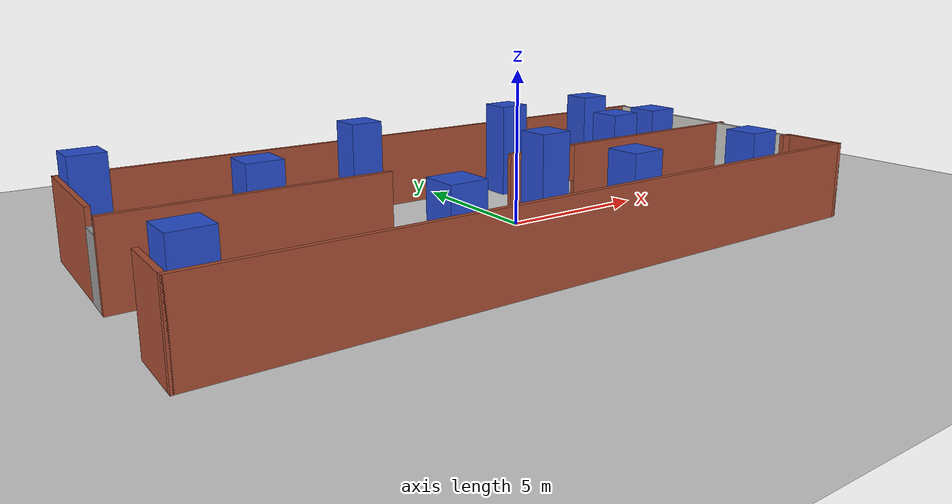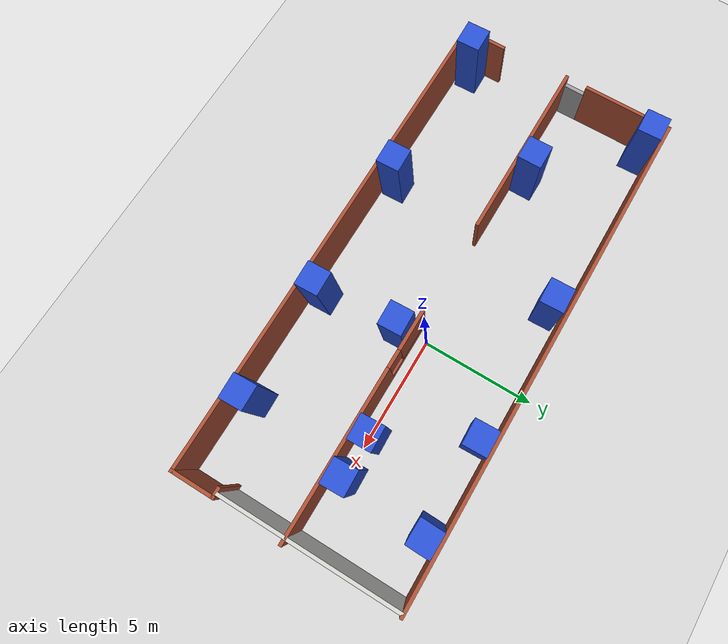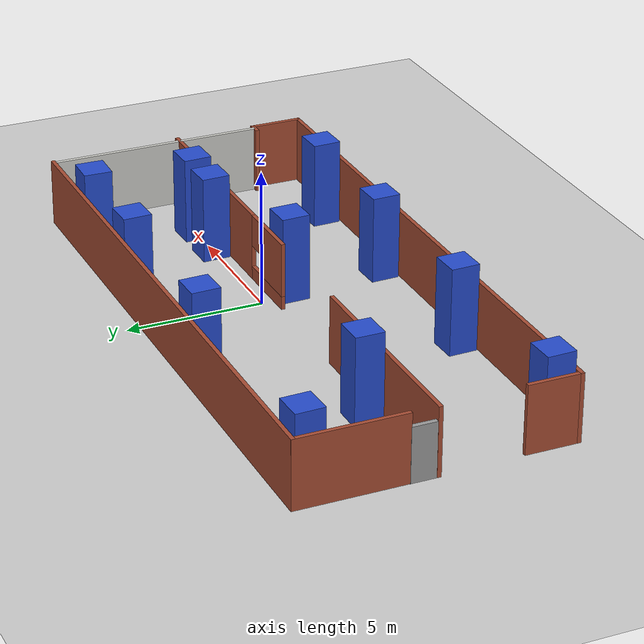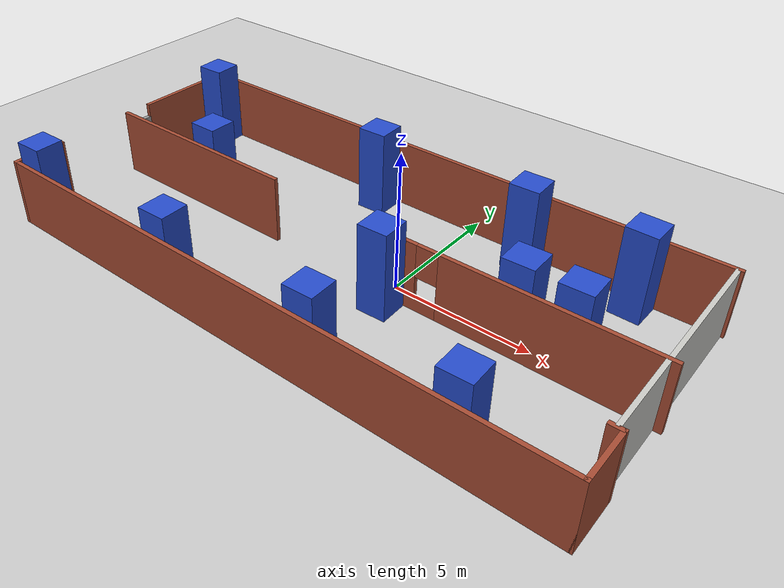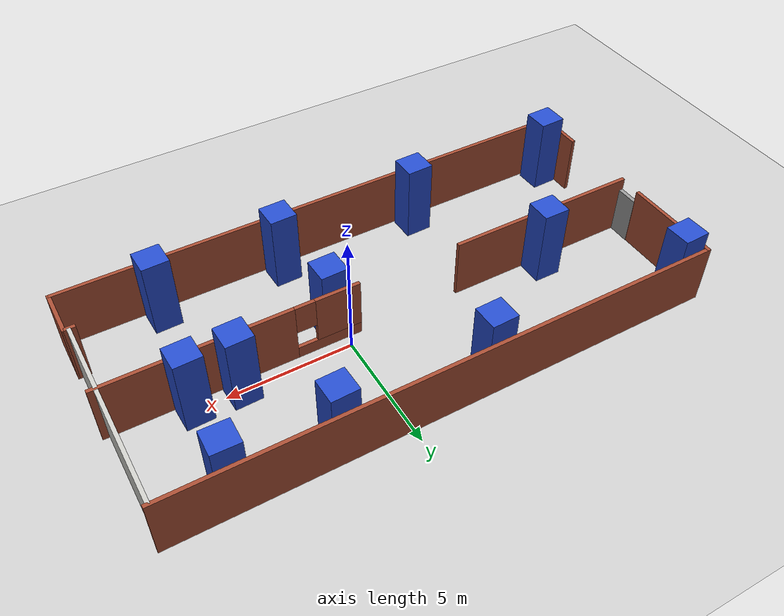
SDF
<sdf version="1.6">
 <world name="default">
  <light name="sun" type="directional">
   <pose>0 0 10 0 -0 0</pose>
   <diffuse>0.8 0.8 0.8 1</diffuse>
   <specular>0.2 0.2 0.2 1</specular>
   <attenuation>
    <range>1000</range>
    <constant>0.9</constant>
    <linear>0.01</linear>
    <quadratic>0.001</quadratic>
   </attenuation>
   <direction>-0.5 0.1 -0.9</direction>
  </light>
  <model name="ground_plane">
   <static>1</static>
   <link name="link">
    <collision name="collision">
     <geometry><plane><normal>0 0 1</normal><size>100 100</size></plane></geometry>
     <surface><friction><ode><mu>100</mu><mu2>50</mu2></ode></friction></surface>
    </collision>
    <visual name="visual">
     <cast_shadows>0</cast_shadows>
     <geometry><plane><normal>0 0 1</normal><size>100 100</size></plane></geometry>
     <material>
      <script><uri>file://media/materials/scripts/gazebo.material</uri><name>Gazebo/Grey</name></script>
     </material>
    </visual>
   </link>
  </model>
  <physics name="default_physics" default="0" type="ode">
   <real_time_update_rate>1000</real_time_update_rate>
   <max_step_size>0.001</max_step_size>
   <real_time_factor>1</real_time_factor>
   <ode>
    <solver>
     <type>quick</type>
     <iters>150</iters>
     <precon_iters>0</precon_iters>
     <sor>1.4</sor>
     <use_dynamic_moi_rescaling>1</use_dynamic_moi_rescaling>
    </solver>
    <constraints>
     <cfm>1e-05</cfm>
     <erp>0.2</erp>
     <contact_max_correcting_vel>2000</contact_max_correcting_vel>
     <contact_surface_layer>0.01</contact_surface_layer>
    </constraints>
   </ode>
  </physics>
  <scene><ambient>0.4 0.4 0.4 1</ambient><background>0.7 0.7 0.7 1</background><shadows>1</shadows></scene>
  <gravity>0 0 -9.8</gravity>
  <magnetic_field>6e-06 2.3e-05 -4.2e-05</magnetic_field>
  <atmosphere type="adiabatic"/>
  <audio><device>default</device></audio>
  <spherical_coordinates>
   <surface_model>EARTH_WGS84</surface_model>
   <latitude_deg>0</latitude_deg>
   <longitude_deg>0</longitude_deg>
   <elevation>0</elevation>
   <heading_deg>0</heading_deg>
  </spherical_coordinates>
  <model name="Almacen_RobotPallet">
   <pose>-1.77101 -0.477706 0 0 -0 0</pose>
   <link name="Door_0">
    <collision name="Door_0_Collision">
     <geometry><box><size>0.9 0.17 2</size></box></geometry>
     <pose>0 0 1 0 -0 0</pose>
    </collision>
    <visual name="Door_0_Visual">
     <pose>0 0 1 0 -0 0</pose>
     <geometry><box><size>0.9 0.17 2</size></box></geometry>
     <material>
      <script><uri>file://media/materials/scripts/gazebo.material</uri><name>Gazebo/Grey</name></script>
     </material>
    </visual>
    <pose>-10.9928 0.560426 0 0 -0 1.56688</pose>
   </link>
   <link name="Wall_1">
    <collision name="Wall_1_Collision">
     <geometry><box><size>22 0.15 2.5</size></box></geometry>
     <pose>0 0 1.25 0 -0 0</pose>
    </collision>
    <visual name="Wall_1_Visual">
     <pose>0 0 1.25 0 -0 0</pose>
     <geometry><box><size>22 0.15 2.5</size></box></geometry>
     <material>
      <script><uri>file://media/materials/scripts/gazebo.material</uri><name>Gazebo/Bricks</name></script>
      <ambient>1 1 1 1</ambient>
     </material>
     <meta><layer>0</layer></meta>
    </visual>
    <pose>0.006161 -4.91576 0 0 -0 0</pose>
   </link>
   <link name="Wall_11">
    <pose>6.08129 -0.036029 0 0 -0 3.14159</pose>
    <visual name="Wall_11_Visual_0">
     <pose>-1.30332 0 1.25 0 -0 0</pose>
     <geometry><box><size>7.39335 0.15 2.5</size></box></geometry>
     <material>
      <script><uri>file://media/materials/scripts/gazebo.material</uri><name>Gazebo/Bricks</name></script>
      <ambient>1 1 1 1</ambient>
     </material>
     <meta><layer>0</layer></meta>
    </visual>
    <collision name="Wall_11_Collision_0">
     <geometry><box><size>7.39335 0.15 2.5</size></box></geometry>
     <pose>-1.30332 0 1.25 0 -0 0</pose>
    </collision>
    <visual name="Wall_11_Visual_1">
     <pose>3.69668 0 0.25 0 -0 0</pose>
     <geometry><box><size>2.60665 0.15 0.5</size></box></geometry>
     <material>
      <script><uri>file://media/materials/scripts/gazebo.material</uri><name>Gazebo/Bricks</name></script>
      <ambient>1 1 1 1</ambient>
     </material>
     <meta><layer>0</layer></meta>
    </visual>
    <collision name="Wall_11_Collision_1">
     <geometry><box><size>2.60665 0.15 0.5</size></box></geometry>
     <pose>3.69668 0 0.25 0 -0 0</pose>
    </collision>
    <visual name="Wall_11_Visual_2">
     <pose>4.09668 0 1.5 0 -0 0</pose>
     <geometry><box><size>1.80665 0.15 2</size></box></geometry>
     <material>
      <script><uri>file://media/materials/scripts/gazebo.material</uri><name>Gazebo/Bricks</name></script>
      <ambient>1 1 1 1</ambient>
     </material>
     <meta><layer>0</layer></meta>
    </visual>
    <collision name="Wall_11_Collision_2">
     <geometry><box><size>1.80665 0.15 2</size></box></geometry>
     <pose>4.09668 0 1.5 0 -0 0</pose>
    </collision>
    <visual name="Wall_11_Visual_3">
     <pose>2.79335 0 1.9 0 -0 0</pose>
     <geometry><box><size>0.8 0.15 1.2</size></box></geometry>
     <material>
      <script><uri>file://media/materials/scripts/gazebo.material</uri><name>Gazebo/Bricks</name></script>
      <ambient>1 1 1 1</ambient>
     </material>
     <meta><layer>0</layer></meta>
    </visual>
    <collision name="Wall_11_Collision_3">
     <geometry><box><size>0.8 0.15 1.2</size></box></geometry>
     <pose>2.79335 0 1.9 0 -0 0</pose>
    </collision>
   </link>
   <link name="Wall_13">
    <collision name="Wall_13_Collision">
     <geometry><box><size>22 0.15 2.5</size></box></geometry>
     <pose>0 0 1.25 0 -0 0</pose>
    </collision>
    <visual name="Wall_13_Visual">
     <pose>0 0 1.25 0 -0 0</pose>
     <geometry><box><size>22 0.15 2.5</size></box></geometry>
     <material>
      <script><uri>file://media/materials/scripts/gazebo.material</uri><name>Gazebo/Bricks</name></script>
      <ambient>1 1 1 1</ambient>
     </material>
     <meta><layer>0</layer></meta>
    </visual>
    <pose>-0.063767 4.91576 0 0 -0 3.14159</pose>
   </link>
   <link name="Wall_17">
    <collision name="Wall_17_Collision">
     <geometry><box><size>8 0.15 2.5</size></box></geometry>
     <pose>0 0 1.25 0 -0 0</pose>
    </collision>
    <visual name="Wall_17_Visual">
     <pose>0 0 1.25 0 -0 0</pose>
     <geometry><box><size>8 0.15 2.5</size></box></geometry>
     <material>
      <script><uri>file://media/materials/scripts/gazebo.material</uri><name>Gazebo/Bricks</name></script>
      <ambient>1 1 1 1</ambient>
     </material>
     <meta><layer>0</layer></meta>
    </visual>
    <pose>-7.08129 0.033931 0 0 -0 0</pose>
   </link>
   <link name="Wall_20">
    <collision name="Wall_20_Collision">
     <geometry><box><size>4 0.15 2.5</size></box></geometry>
     <pose>0 0 1.25 0 -0 0</pose>
    </collision>
    <visual name="Wall_20_Visual">
     <pose>0 0 1.25 0 -0 0</pose>
     <geometry><box><size>4 0.15 2.5</size></box></geometry>
     <material>
      <script><uri>file://media/materials/scripts/gazebo.material</uri><name>Gazebo/Bricks</name></script>
      <ambient>1 1 1 1</ambient>
     </material>
     <meta><layer>0</layer></meta>
    </visual>
    <pose>-10.9937 2.99076 0 0 -0 -1.5708</pose>
   </link>
   <link name="Wall_25">
    <collision name="Wall_25_Collision">
     <geometry><box><size>5 0.15 2.5</size></box></geometry>
     <pose>0 0 1.25 0 -0 0</pose>
    </collision>
    <visual name="Wall_25_Visual">
     <pose>0 0 1.25 0 -0 0</pose>
     <geometry><box><size>5 0.15 2.5</size></box></geometry>
     <material>
      <script><uri>file://media/materials/scripts/gazebo.material</uri><name>Gazebo/CeilingTiled</name></script>
      <ambient>1 1 1 1</ambient>
     </material>
     <meta><layer>0</layer></meta>
    </visual>
    <pose>10.7678 2.4228 0 0 -0 -1.5708</pose>
   </link>
   <link name="Wall_27">
    <collision name="Wall_27_Collision">
     <geometry><box><size>3 0.15 2.5</size></box></geometry>
     <pose>0 0 1.25 0 -0 0</pose>
    </collision>
    <visual name="Wall_27_Visual">
     <pose>0 0 1.25 0 -0 0</pose>
     <geometry><box><size>3 0.15 2.5</size></box></geometry>
     <material>
      <script><uri>file://media/materials/scripts/gazebo.material</uri><name>Gazebo/CeilingTiled</name></script>
      <ambient>1 1 1 1</ambient>
     </material>
     <meta><layer>0</layer></meta>
    </visual>
    <pose>10.7578 -1.5472 0 0 -0 -1.5708</pose>
   </link>
   <link name="Wall_29">
    <collision name="Wall_29_Collision">
     <geometry><box><size>0.5 0.15 2.5</size></box></geometry>
     <pose>0 0 1.25 0 -0 0</pose>
    </collision>
    <visual name="Wall_29_Visual">
     <pose>0 0 1.25 0 -0 0</pose>
     <geometry><box><size>0.5 0.15 2.5</size></box></geometry>
     <material>
      <script><uri>file://media/materials/scripts/gazebo.material</uri><name>Gazebo/Bricks</name></script>
      <ambient>1 1 1 1</ambient>
     </material>
     <meta><layer>0</layer></meta>
    </visual>
    <pose>10.7562 -3.06576 0 0 -0 3.14159</pose>
   </link>
   <link name="Wall_3">
    <collision name="Wall_3_Collision">
     <geometry><box><size>2 0.15 2.5</size></box></geometry>
     <pose>0 0 1.25 0 -0 0</pose>
    </collision>
    <visual name="Wall_3_Visual">
     <pose>0 0 1.25 0 -0 0</pose>
     <geometry><box><size>2 0.15 2.5</size></box></geometry>
     <material>
      <script><uri>file://media/materials/scripts/gazebo.material</uri><name>Gazebo/Bricks</name></script>
      <ambient>1 1 1 1</ambient>
     </material>
     <meta><layer>0</layer></meta>
    </visual>
    <pose>10.9312 -3.99076 0 0 -0 1.5708</pose>
   </link>
   <link name="Wall_5">
    <collision name="Wall_5_Collision">
     <geometry><box><size>2 0.15 2.5</size></box></geometry>
     <pose>0 0 1.25 0 -0 0</pose>
    </collision>
    <visual name="Wall_5_Visual">
     <pose>0 0 1.25 0 -0 0</pose>
     <geometry><box><size>2 0.15 2.5</size></box></geometry>
     <material>
      <script><uri>file://media/materials/scripts/gazebo.material</uri><name>Gazebo/Bricks</name></script>
      <ambient>1 1 1 1</ambient>
     </material>
     <meta><layer>0</layer></meta>
    </visual>
    <pose>-10.9188 -3.99076 0 0 -0 1.5708</pose>
   </link>
   <static>1</static>
  </model>
  <model name="demo_cube">
   <static>0</static>
   <link name="link">
    <inertial>
     <mass>0.25</mass>
     <inertia><ixx>0.00015</ixx><ixy>0</ixy><ixz>0</ixz><iyy>0.00015</iyy><iyz>0</iyz><izz>0.00015</izz></inertia>
    </inertial>
    <collision name="collision">
     <geometry><box><size>1e-05 1.2e-05 0</size></box></geometry>
     <surface>
      <friction><ode><mu>30</mu><mu2>30</mu2></ode></friction>
      <contact><ode><kp>1e+06</kp><kd>100</kd><max_vel>1</max_vel><min_depth>0.002</min_depth></ode></contact>
     </surface>
    </collision>
    <visual name="visual">
     <geometry><box><size>1e-05 1.2e-05 0</size></box></geometry>
     <material>
      <script><uri>file://media/materials/scripts/gazebo.material</uri><name>Gazebo/Blue</name></script>
     </material>
    </visual>
    <velocity_decay><linear>0</linear><angular>0</angular></velocity_decay>
   </link>
   <pose>6.07378 -1.15142 1.61537 -2e-06 -0.001867 0.030921</pose>
  </model>
  <model name="demo_cube_clone">
   <static>0</static>
   <link name="link">
    <inertial>
     <mass>0.25</mass>
     <inertia><ixx>0.00015</ixx><ixy>0</ixy><ixz>0</ixz><iyy>0.00015</iyy><iyz>0</iyz><izz>0.00015</izz></inertia>
    </inertial>
    <collision name="collision">
     <geometry><box><size>1.07852 1.03689 3.23275</size></box></geometry>
     <surface>
      <friction><ode><mu>30</mu><mu2>30</mu2></ode></friction>
      <contact><ode><kp>1e+06</kp><kd>100</kd><max_vel>1</max_vel><min_depth>0.002</min_depth></ode></contact>
     </surface>
    </collision>
    <visual name="visual">
     <geometry><box><size>1.07852 1.03689 3.23275</size></box></geometry>
     <material>
      <script><uri>file://media/materials/scripts/gazebo.material</uri><name>Gazebo/Blue</name></script>
     </material>
    </visual>
    <velocity_decay><linear>0</linear><angular>0</angular></velocity_decay>
   </link>
   <pose>6.40508 3.81085 1.61537 0.001937 1e-06 -0.023278</pose>
  </model>
  <model name="demo_cube_clone_0">
   <static>0</static>
   <link name="link">
    <inertial>
     <mass>0.25</mass>
     <inertia><ixx>0.00015</ixx><ixy>0</ixy><ixz>0</ixz><iyy>0.00015</iyy><iyz>0</iyz><izz>0.00015</izz></inertia>
    </inertial>
    <collision name="collision">
     <geometry><box><size>1.07852 1.03689 3.23275</size></box></geometry>
     <surface>
      <friction><ode><mu>30</mu><mu2>30</mu2></ode></friction>
      <contact><ode><kp>1e+06</kp><kd>100</kd><max_vel>1</max_vel><min_depth>0.002</min_depth></ode></contact>
     </surface>
    </collision>
    <visual name="visual">
     <geometry><box><size>1.07852 1.03689 3.23275</size></box></geometry>
     <material>
      <script><uri>file://media/materials/scripts/gazebo.material</uri><name>Gazebo/Blue</name></script>
     </material>
    </visual>
    <velocity_decay><linear>0</linear><angular>0</angular></velocity_decay>
   </link>
   <pose>2.45638 3.80935 1.61537 1e-06 -0.001862 0.030814</pose>
  </model>
  <model name="demo_cube_clone_1">
   <static>0</static>
   <link name="link">
    <inertial>
     <mass>0.25</mass>
     <inertia><ixx>0.00015</ixx><ixy>0</ixy><ixz>0</ixz><iyy>0.00015</iyy><iyz>0</iyz><izz>0.00015</izz></inertia>
    </inertial>
    <collision name="collision">
     <geometry><box><size>1.07852 1.03689 3.23275</size></box></geometry>
     <surface>
      <friction><ode><mu>30</mu><mu2>30</mu2></ode></friction>
      <contact><ode><kp>1e+06</kp><kd>100</kd><max_vel>1</max_vel><min_depth>0.002</min_depth></ode></contact>
     </surface>
    </collision>
    <visual name="visual">
     <geometry><box><size>1.07852 1.03689 3.23275</size></box></geometry>
     <material>
      <script><uri>file://media/materials/scripts/gazebo.material</uri><name>Gazebo/Blue</name></script>
     </material>
    </visual>
    <velocity_decay><linear>0</linear><angular>0</angular></velocity_decay>
   </link>
   <pose>6.18243 0.109722 1.61537 -1e-06 -0.001861 0.030916</pose>
  </model>
  <model name="demo_cube_clone_2">
   <static>0</static>
   <link name="link">
    <inertial>
     <mass>0.25</mass>
     <inertia><ixx>0.00015</ixx><ixy>0</ixy><ixz>0</ixz><iyy>0.00015</iyy><iyz>0</iyz><izz>0.00015</izz></inertia>
    </inertial>
    <collision name="collision">
     <geometry><box><size>1.07852 1.03689 3.23275</size></box></geometry>
     <surface>
      <friction><ode><mu>30</mu><mu2>30</mu2></ode></friction>
      <contact><ode><kp>1e+06</kp><kd>100</kd><max_vel>1</max_vel><min_depth>0.002</min_depth></ode></contact>
     </surface>
    </collision>
    <visual name="visual">
     <geometry><box><size>1.07852 1.03689 3.23275</size></box></geometry>
     <material>
      <script><uri>file://media/materials/scripts/gazebo.material</uri><name>Gazebo/Blue</name></script>
     </material>
    </visual>
    <velocity_decay><linear>0</linear><angular>0</angular></velocity_decay>
   </link>
   <pose>4.39332 0.125004 1.61537 -1e-06 -0.001861 0.030916</pose>
  </model>
  <model name="demo_cube_clone_3">
   <static>0</static>
   <link name="link">
    <inertial>
     <mass>0.25</mass>
     <inertia><ixx>0.00015</ixx><ixy>0</ixy><ixz>0</ixz><iyy>0.00015</iyy><iyz>0</iyz><izz>0.00015</izz></inertia>
    </inertial>
    <collision name="collision">
     <geometry><box><size>1.07852 1.03689 3.23275</size></box></geometry>
     <surface>
      <friction><ode><mu>30</mu><mu2>30</mu2></ode></friction>
      <contact><ode><kp>1e+06</kp><kd>100</kd><max_vel>1</max_vel><min_depth>0.002</min_depth></ode></contact>
     </surface>
    </collision>
    <visual name="visual">
     <geometry><box><size>1.07852 1.03689 3.23275</size></box></geometry>
     <material>
      <script><uri>file://media/materials/scripts/gazebo.material</uri><name>Gazebo/Blue</name></script>
     </material>
    </visual>
    <velocity_decay><linear>0</linear><angular>0</angular></velocity_decay>
   </link>
   <pose>-3.6469 3.72656 1.61537 -1e-06 -0.001861 0.030916</pose>
  </model>
  <model name="demo_cube_clone_4">
   <static>0</static>
   <link name="link">
    <inertial>
     <mass>0.25</mass>
     <inertia><ixx>0.00015</ixx><ixy>0</ixy><ixz>0</ixz><iyy>0.00015</iyy><iyz>0</iyz><izz>0.00015</izz></inertia>
    </inertial>
    <collision name="collision">
     <geometry><box><size>1.07852 1.03689 3.23275</size></box></geometry>
     <surface>
      <friction><ode><mu>30</mu><mu2>30</mu2></ode></friction>
      <contact><ode><kp>1e+06</kp><kd>100</kd><max_vel>1</max_vel><min_depth>0.002</min_depth></ode></contact>
     </surface>
    </collision>
    <visual name="visual">
     <geometry><box><size>1.07852 1.03689 3.23275</size></box></geometry>
     <material>
      <script><uri>file://media/materials/scripts/gazebo.material</uri><name>Gazebo/Blue</name></script>
     </material>
    </visual>
    <velocity_decay><linear>0</linear><angular>0</angular></velocity_decay>
   </link>
   <pose>5.52014 -4.71974 1.61537 -1e-06 -0.001861 0.030916</pose>
  </model>
  <model name="demo_cube_clone_5">
   <static>0</static>
   <link name="link">
    <inertial>
     <mass>0.25</mass>
     <inertia><ixx>0.00015</ixx><ixy>0</ixy><ixz>0</ixz><iyy>0.00015</iyy><iyz>0</iyz><izz>0.00015</izz></inertia>
    </inertial>
    <collision name="collision">
     <geometry><box><size>1.07852 1.03689 3.23275</size></box></geometry>
     <surface>
      <friction><ode><mu>30</mu><mu2>30</mu2></ode></friction>
      <contact><ode><kp>1e+06</kp><kd>100</kd><max_vel>1</max_vel><min_depth>0.002</min_depth></ode></contact>
     </surface>
    </collision>
    <visual name="visual">
     <geometry><box><size>1.07852 1.03689 3.23275</size></box></geometry>
     <material>
      <script><uri>file://media/materials/scripts/gazebo.material</uri><name>Gazebo/Blue</name></script>
     </material>
    </visual>
    <velocity_decay><linear>0</linear><angular>0</angular></velocity_decay>
   </link>
   <pose>0.499425 -4.72874 1.61537 -1e-06 -0.001861 0.030916</pose>
  </model>
  <model name="demo_cube_clone_6">
   <static>0</static>
   <link name="link">
    <inertial>
     <mass>0.25</mass>
     <inertia><ixx>0.00015</ixx><ixy>0</ixy><ixz>0</ixz><iyy>0.00015</iyy><iyz>0</iyz><izz>0.00015</izz></inertia>
    </inertial>
    <collision name="collision">
     <geometry><box><size>1.07852 1.03689 3.23275</size></box></geometry>
     <surface>
      <friction><ode><mu>30</mu><mu2>30</mu2></ode></friction>
      <contact><ode><kp>1e+06</kp><kd>100</kd><max_vel>1</max_vel><min_depth>0.002</min_depth></ode></contact>
     </surface>
    </collision>
    <visual name="visual">
     <geometry><box><size>1.07852 1.03689 3.23275</size></box></geometry>
     <material>
      <script><uri>file://media/materials/scripts/gazebo.material</uri><name>Gazebo/Blue</name></script>
     </material>
    </visual>
    <velocity_decay><linear>0</linear><angular>0</angular></velocity_decay>
   </link>
   <pose>-12.0398 -4.71629 1.61537 -1e-06 -0.001861 0.030916</pose>
  </model>
  <model name="demo_cube_clone_7">
   <static>0</static>
   <link name="link">
    <inertial>
     <mass>0.25</mass>
     <inertia><ixx>0.00015</ixx><ixy>0</ixy><ixz>0</ixz><iyy>0.00015</iyy><iyz>0</iyz><izz>0.00015</izz></inertia>
    </inertial>
    <collision name="collision">
     <geometry><box><size>1.07852 1.03689 3.23275</size></box></geometry>
     <surface>
      <friction><ode><mu>30</mu><mu2>30</mu2></ode></friction>
      <contact><ode><kp>1e+06</kp><kd>100</kd><max_vel>1</max_vel><min_depth>0.002</min_depth></ode></contact>
     </surface>
    </collision>
    <visual name="visual">
     <geometry><box><size>1.07852 1.03689 3.23275</size></box></geometry>
     <material>
      <script><uri>file://media/materials/scripts/gazebo.material</uri><name>Gazebo/Blue</name></script>
     </material>
    </visual>
    <velocity_decay><linear>0</linear><angular>0</angular></velocity_decay>
   </link>
   <pose>-5.5027 -4.74377 1.61537 -1e-06 -0.001861 0.030916</pose>
  </model>
  <model name="demo_cube_clone_8">
   <static>0</static>
   <link name="link">
    <inertial>
     <mass>0.25</mass>
     <inertia><ixx>0.00015</ixx><ixy>0</ixy><ixz>0</ixz><iyy>0.00015</iyy><iyz>0</iyz><izz>0.00015</izz></inertia>
    </inertial>
    <collision name="collision">
     <geometry><box><size>1.07852 1.03689 3.23275</size></box></geometry>
     <surface>
      <friction><ode><mu>30</mu><mu2>30</mu2></ode></friction>
      <contact><ode><kp>1e+06</kp><kd>100</kd><max_vel>1</max_vel><min_depth>0.002</min_depth></ode></contact>
     </surface>
    </collision>
    <visual name="visual">
     <geometry><box><size>1.07852 1.03689 3.23275</size></box></geometry>
     <material>
      <script><uri>file://media/materials/scripts/gazebo.material</uri><name>Gazebo/Blue</name></script>
     </material>
    </visual>
    <velocity_decay><linear>0</linear><angular>0</angular></velocity_decay>
   </link>
   <pose>-12.119 3.80964 1.61537 -1e-06 -0.001861 0.030916</pose>
  </model>
  <model name="demo_cube_clone_9">
   <static>0</static>
   <link name="link">
    <inertial>
     <mass>0.25</mass>
     <inertia><ixx>0.00015</ixx><ixy>0</ixy><ixz>0</ixz><iyy>0.00015</iyy><iyz>0</iyz><izz>0.00015</izz></inertia>
    </inertial>
    <collision name="collision">
     <geometry><box><size>1.07852 1.03689 3.23275</size></box></geometry>
     <surface>
      <friction><ode><mu>30</mu><mu2>30</mu2></ode></friction>
      <contact><ode><kp>1e+06</kp><kd>100</kd><max_vel>1</max_vel><min_depth>0.002</min_depth></ode></contact>
     </surface>
    </collision>
    <visual name="visual">
     <geometry><box><size>1.07852 1.03689 3.23275</size></box></geometry>
     <material>
      <script><uri>file://media/materials/scripts/gazebo.material</uri><name>Gazebo/Blue</name></script>
     </material>
    </visual>
    <velocity_decay><linear>0</linear><angular>0</angular></velocity_decay>
   </link>
   <pose>-8.53998 0.150893 1.61537 -1e-06 -0.001867 -6.4e-05</pose>
  </model>
  <model name="demo_cube_clone_10">
   <static>0</static>
   <link name="link">
    <inertial>
     <mass>0.25</mass>
     <inertia><ixx>0.00015</ixx><ixy>0</ixy><ixz>0</ixz><iyy>0.00015</iyy><iyz>0</iyz><izz>0.00015</izz></inertia>
    </inertial>
    <collision name="collision">
     <geometry><box><size>1.07852 1.03689 3.23275</size></box></geometry>
     <surface>
      <friction><ode><mu>30</mu><mu2>30</mu2></ode></friction>
      <contact><ode><kp>1e+06</kp><kd>100</kd><max_vel>1</max_vel><min_depth>0.002</min_depth></ode></contact>
     </surface>
    </collision>
    <visual name="visual">
     <geometry><box><size>1.07852 1.03689 3.23275</size></box></geometry>
     <material>
      <script><uri>file://media/materials/scripts/gazebo.material</uri><name>Gazebo/Blue</name></script>
     </material>
    </visual>
    <velocity_decay><linear>0</linear><angular>0</angular></velocity_decay>
   </link>
   <pose>0.223479 -1.15413 1.61537 -1e-06 -0.001861 0.030916</pose>
  </model>
 </world>
</sdf>
